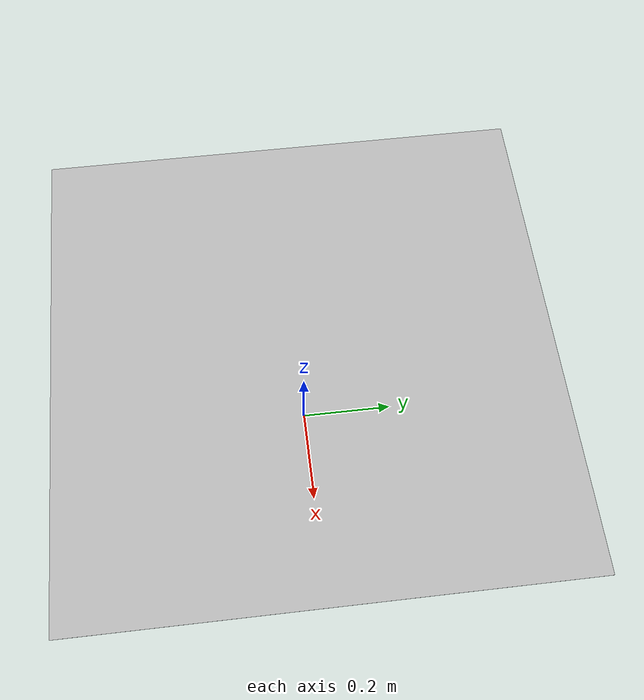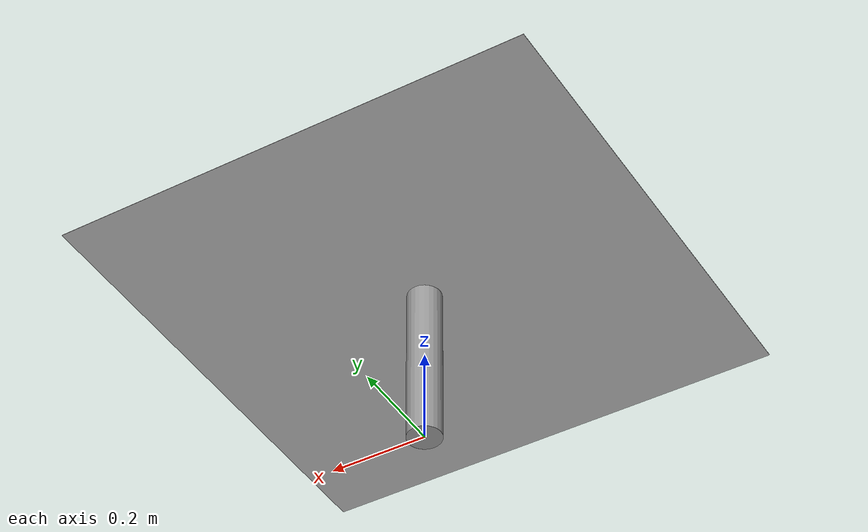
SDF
<?xml version='1.0'?>
<sdf version='1.5'>
  <model name='roulette_wheel'>

    <pose> 0 0 0 0 0 0</pose>
    <self_collide> 0 </self_collide>
    <static>0</static>

    <joint name='rotation_joint' type="revolute">
      <parent> roulette_stock </parent>
      <child> roulette_wheel </child>
      <axis>
        <xyz> 0 0 1 </xyz>
      </axis>
      <physics>
        <ode>
          <velocity> 1 </velocity>
        </ode>
      </physics>
    </joint>

    <link name='roulette_wheel'>
      <pose> 0 0 0.35 0 0 0</pose>
      <visual name='roulette_top'>
        <geometry>
          <box>
            <size>1.0 1.00 0.001</size>
          </box>
        </geometry>
        <material>
          <script>
            <uri>model://2018/roulette/materials/scripts</uri>
            <uri>model://2018/roulette/materials/textures</uri>
            <name>Roulette/Face</name>
          </script>
        </material>
      </visual>

      <collision name="roulette_wheel_collision">
        <geometry>
          <box>
            <size>1.0 1.00 0.001</size>
          </box>
        </geometry>
      </collision>
    </link>

    <link name='roulette_stock'>
      <pose> 0 0 0.174 0 0 0 </pose>
      <visual name='roulette_stock_vis'>
        <geometry>
          <cylinder>
            <radius>0.035</radius>
            <length>0.35</length>
          </cylinder>
        </geometry>
        <material>
          <script>
            <uri>file://media/materials/scripts/gazebo.material</uri>
            <name>Gazebo/Grey</name>
          </script>
        </material>
      </visual>
      <collision name='roulette_collide'>
        <geometry>
          <cylinder>
            <radius>0.5</radius>
            <length>0.35</length>
          </cylinder>
        </geometry>
      </collision>
    </link>

  </model>
</sdf>
